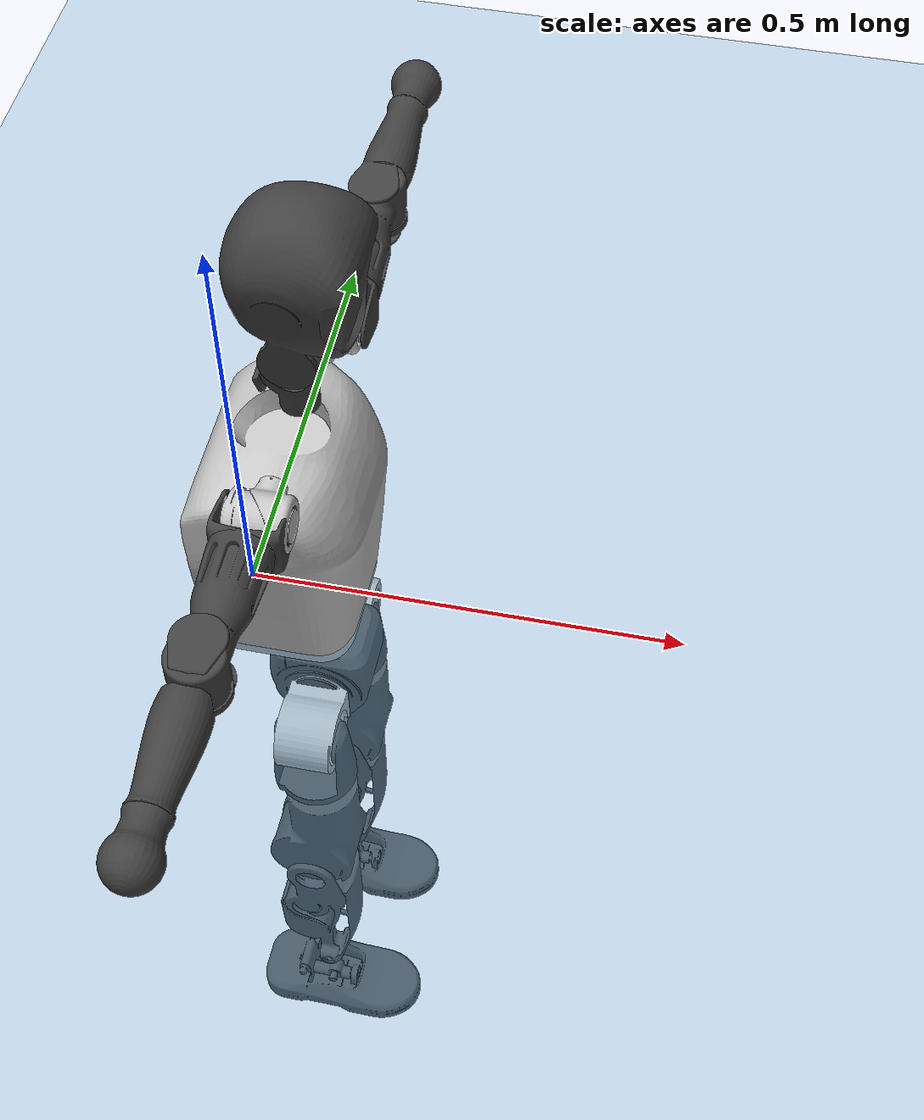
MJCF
<mujoco model="T1">
  <compiler angle="radian" assetdir="assets" balanceinertia="true" inertiafromgeom="false"/>

  <option timestep="0.005" density="1.2" viscosity="2e-05"/>

  <size nkey="1"/>

  <visual>
    <quality shadowsize="8192"/>
    <map shadowclip="0.5"/>
  </visual>

  <default>
    <default class="/">
      <joint armature="0.01" damping="0.01" frictionloss="0.1"/>
      <geom contype="0" conaffinity="0" group="1" solref="-1000 -80"/>
      <site size="0.01 0.005 0.005" group="5"/>
      <general forcelimited="true" biastype="affine" gainprm="25" biasprm="0 -25 -0.6"/>
      <default class="t1">
        <geom rgba="0.25 0.25 0.25 1"/>
        <default class="visual">
          <geom type="mesh" group="2"/>
        </default>
        <default class="collision">
          <geom group="3"/>
        </default>
        <default class="foot">
          <geom size="0.1115 0.05 0.015" type="box" condim="6" group="4" priority="1" solimp="0.015 1 0.015"/>
        </default>
        <default class="reward_collision_sphere">
          <geom group="5" rgba="1 0 0 1"/>
        </default>
      </default>
    </default>
  </default>

  <asset>
    <texture type="skybox" colorspace="auto" name="//unnamed_texture_0" builtin="gradient" rgb1="0.95 0.95 0.95" rgb2="0.95 0.95 0.95" width="100" height="600"/>
    <texture type="2d" colorspace="auto" name="texplane" builtin="checker" rgb1="0.345 0.575 0.748" rgb2="0.345 0.575 0.748" markrgb="1 1 1" width="512" height="512"/>
    <material name="MatPlane" class="/" texture="texplane" texuniform="true" texrepeat="2 2" specular="0.9"/>
    <mesh name="Trunk" class="/" file="Trunk.stl"/>
    <mesh name="H1" class="/" file="H1.stl"/>
    <mesh name="H2" class="/" file="H2.stl"/>
    <mesh name="AL1" class="/" file="AL1.stl"/>
    <mesh name="AL2" class="/" file="AL2.stl"/>
    <mesh name="AL3" class="/" file="AL3.stl"/>
    <mesh name="left_hand_link" class="/" file="left_hand_link.stl"/>
    <mesh name="AR1" class="/" file="AR1.stl"/>
    <mesh name="AR2" class="/" file="AR2.stl"/>
    <mesh name="AR3" class="/" file="AR3.stl"/>
    <mesh name="right_hand_link" class="/" file="right_hand_link.stl"/>
    <mesh name="Waist" class="/" file="Waist.stl"/>
    <mesh name="Hip_Pitch_Left" class="/" file="Hip_Pitch_Left.stl"/>
    <mesh name="Hip_Roll_Left" class="/" file="Hip_Roll_Left.stl"/>
    <mesh name="Hip_Yaw_Left" class="/" file="Hip_Yaw_Left.stl"/>
    <mesh name="Shank_Left" class="/" file="Shank_Left.stl"/>
    <mesh name="Ankle_Cross_Left" class="/" file="Ankle_Cross_Left.stl"/>
    <mesh name="left_foot_link" class="/" file="left_foot_link.stl"/>
    <mesh name="Hip_Pitch_Right" class="/" file="Hip_Pitch_Right.stl"/>
    <mesh name="Hip_Roll_Right" class="/" file="Hip_Roll_Right.stl"/>
    <mesh name="Hip_Yaw_Right" class="/" file="Hip_Yaw_Right.stl"/>
    <mesh name="Shank_Right" class="/" file="Shank_Right.stl"/>
    <mesh name="Ankle_Cross_Right" class="/" file="Ankle_Cross_Right.stl"/>
    <mesh name="right_foot_link" class="/" file="right_foot_link.stl"/>
  </asset>

  <worldbody>
    <geom name="floor" class="/" size="100 100 0.125" type="plane" group="0" material="MatPlane"/>
    <light name="toplight_shadow" class="/" pos="0 0 5" dir="0.0990148 0.0990148 -0.990148" type="directional" ambient="0.04 0.04 0.04" diffuse="0.55 0.55 0.55" specular="0.12 0.12 0.12"/>
    <light name="toplight_fill" class="/" pos="0 0 5" dir="0.0990148 0.0990148 -0.990148" type="directional" castshadow="false" ambient="0.04 0.04 0.04" diffuse="0.3 0.3 0.3" specular="0.08 0.08 0.08"/>
    <body name="trunk" childclass="t1" pos="0.000396937 -0.000452547 0.00158526" quat="1 -0.000296455 -0.000206889 -0.000840778">
      <inertial pos="0.0693204 -0.00174549 0.132827" quat="0.999993 -0.00101046 -0.000718762 -0.00363006" mass="16.8778" diaginertia="0.246676 0.0377068 0.169695"/>
      <joint name="//unnamed_joint_0" type="free" armature="0" damping="0" frictionloss="0"/>
      <geom name="//unnamed_geom_1" class="visual" rgba="0.76 0.76 0.76 1" mesh="Trunk"/>
      <geom name="//unnamed_geom_2" class="collision" size="0.0845867 0.112782 0.169173" pos="0.0749434 0 0.151826" type="box"/>
      <geom name="//unnamed_geom_3" class="reward_collision_sphere" size="0.1297" pos="0.0749434 0 0.126522"/>
      <geom name="//unnamed_geom_4" class="reward_collision_sphere" size="0.0169173" pos="0.0749434 0.0738812 0"/>
      <geom name="//unnamed_geom_5" class="reward_collision_sphere" size="0.0169173" pos="0.0749434 -0.0738812 0"/>
      <geom name="//unnamed_geom_6" class="reward_collision_sphere" size="0.0169173" pos="0.0749434 0.0930033 0.22774"/>
      <geom name="//unnamed_geom_7" class="reward_collision_sphere" size="0.0169173" pos="0.0749434 -0.0930033 0.22774"/>
      <site name="imu" pos="-0.0076228 0.00100024 0.00693888" size="0.0112782"/>
      <camera name="track" pos="0 -1.73838 0" quat="0.707107 0.707107 0 0" mode="trackcom"/>
      <camera name="ego_camera" pos="0.152385 0 0.531392" quat="-0.5 -0.5 0.5 0.5"/>
      <body name="H1" pos="0.0802931 -5.75145e-05 0.312009" quat="1 0.000635453 2.45554e-05 -0.000144594">
        <inertial pos="-0.0022479 -0.00371068 0.0726015" quat="0.763911 -0.0130313 0.00150694 0.645188" mass="0.647201" diaginertia="0.000729782 0.000112685 0.000489859"/>
        <joint name="AAHead_yaw" pos="0 0 0" axis="0.0130076 0.000218608 0.999915" range="-1.59912 1.59489" armature="0.0087134" damping="0.0131982" frictionloss="0.090471"/>
        <geom name="//unnamed_geom_8" class="visual" mesh="H1"/>
        <body name="H2" pos="-0.00172395 0.00642886 0.075788" quat="1 0.000246286 0.000656492 -0.000366977">
          <inertial pos="0.00689518 0.00390949 0.130304" quat="0.98889 0.0946418 -0.0789054 -0.0831424" mass="0.933829" diaginertia="0.00647564 0.00104173 0.00564604"/>
          <joint name="Head_pitch" pos="0 0 0" axis="-0.000511437 -0.999959 0.00905737" range="-1.18954 0.309285" armature="0.0110829" damping="0.0276387" frictionloss="0.125606"/>
          <geom name="//unnamed_geom_9" class="visual" mesh="H2"/>
          <geom name="//unnamed_geom_10" class="collision" size="0.0902258" pos="0.0124906 0 0.139174"/>
          <geom name="//unnamed_geom_11" class="reward_collision_sphere" size="0.101504" pos="0.0249811 0 0.126522"/>
        </body>
      </body>
      <body name="AL1" pos="0.0759152 0.095695 0.281528" quat="0.999996 0.00134764 0.0017379 0.00167477">
        <inertial pos="-0.000291365 0.0404023 -0.00179535" quat="0.5041 0.495843 -0.504129 0.495859" mass="0.755682" diaginertia="0.00412714 0.000680032 0.000983016"/>
        <joint name="Left_Shoulder_Pitch" pos="0 0 0" axis="-0.00583734 0.999973 -0.00450007" range="-3.30589 1.12055" armature="0.0110437" damping="0.0298883" frictionloss="0.114366"/>
        <geom name="//unnamed_geom_12" class="visual" rgba="0.76 0.76 0.76 1" mesh="AL1"/>
        <body name="AL2" pos="0.00434395 0.0430345 0.00143802" quat="1 -2.51742e-05 -7.45563e-06 1.92589e-05">
          <inertial pos="0.0038664 0.028659 -0.000565859" quat="0.493905 0.502628 -0.492893 0.510372" mass="0.222725" diaginertia="0.00122263 0.000175523 0.000568538"/>
          <joint name="Left_Shoulder_Roll" pos="0 0 0" axis="-0.999894 -0.00985227 -0.0106985" stiffness="0.0292533" range="-1.5622 1.76643" armature="0.00841956" damping="0.00984705" frictionloss="0.111461"/>
          <geom name="//unnamed_geom_13" class="visual" mesh="AL2"/>
          <body name="AL3" pos="0.00242209 0.0530477 0.00011246" quat="0.999999 -0.000390882 4.36718e-05 -0.00114518">
            <inertial pos="-0.00362516 0.0786965 0.00111565" quat="0.706414 0.707799 -1.19456e-05 3.53761e-06" mass="1.58318" diaginertia="0.038726 0.00657439 0.00212"/>
            <joint name="Left_Elbow_Pitch" pos="0 0 0" axis="0.00334279 -0.999989 0.00327424" range="-2.1669 2.24105" armature="0.00761275" damping="0" frictionloss="0.108498"/>
            <geom name="//unnamed_geom_14" class="visual" mesh="AL3"/>
            <geom name="//unnamed_geom_15" class="collision" size="0.0338347 0.0845867" pos="0 0.0434595 0" quat="0.707105 0.707108 0 0" type="cylinder"/>
            <geom name="//unnamed_geom_16" class="reward_collision_sphere" size="0.0406016"/>
            <body name="left_hand_link" pos="-0.00197856 0.130741 0.000973506" quat="0.999997 0.00229594 0.000856014 0.000419083">
              <inertial pos="0.00517929 0.0966178 0.00168095" quat="0.714061 0.700041 0.00240147 -0.00738068" mass="0.473767" diaginertia="0.0260834 0.0041196 0.000667748"/>
              <joint name="Left_Elbow_Yaw" pos="0 0 0" axis="-0.00254443 0.0035748 0.99999" stiffness="0.00401115" range="-2.46049 0.109956" armature="0.00986873" damping="0.0152222" frictionloss="0.113794"/>
              <geom name="//unnamed_geom_17" class="visual" mesh="left_hand_link"/>
              <geom name="//unnamed_geom_18" class="collision" size="0.0338347 0.0986844" pos="0 0.112995 0" quat="0.707105 0.707108 0 0" type="cylinder"/>
              <geom name="//unnamed_geom_19" class="reward_collision_sphere" size="0.0563911"/>
              <geom name="//unnamed_geom_20" class="reward_collision_sphere" size="0.0394738" pos="0 0.0956109 0"/>
              <geom name="//unnamed_geom_21" class="reward_collision_sphere" size="0.0394738" pos="0 0.186876 0"/>
            </body>
          </body>
        </body>
      </body>
      <body name="AR1" pos="0.0729306 -0.0878321 0.280393" quat="0.999999 0.00036812 0.00107346 0.000292172">
        <inertial pos="-8.66619e-05 -0.0328591 -0.00210897" quat="0.505808 0.495426 -0.504477 0.494181" mass="0.809348" diaginertia="0.00428044 0.000655146 0.00100225"/>
        <joint name="Right_Shoulder_Pitch" pos="0 0 0" axis="-0.0138762 -0.99988 0.00684983" stiffness="0.0286853" range="-1.22609 3.30331" armature="0.00936366" damping="0" frictionloss="0.10868"/>
        <geom name="//unnamed_geom_22" class="visual" rgba="0.76 0.76 0.76 1" mesh="AR1"/>
        <body name="AR2" pos="-0.00554102 -0.0411701 0.000383124" quat="0.999998 -0.00090872 -0.00130031 -0.00117572">
          <inertial pos="0.0056603 -0.0314837 -0.00121398" quat="0.514927 0.489493 -0.508687 0.486297" mass="0.24217" diaginertia="0.0012282 0.000163279 0.000557573"/>
          <joint name="Right_Shoulder_Roll" pos="0 0 0" axis="-0.999964 -0.0040603 0.00742841" range="-1.70524 1.60956" armature="0.0111459" damping="0.0111093" frictionloss="0.0773877"/>
          <geom name="//unnamed_geom_23" class="visual" mesh="AR2"/>
          <body name="AR3" pos="-0.000564295 -0.050842 0.00640507" quat="1 -0.00014826 -0.000103209 0.000106333">
            <inertial pos="0.00123669 -0.0700899 -0.00100188" quat="0.710934 0.70307 -0.00315783 0.0159634" mass="1.44554" diaginertia="0.0385911 0.00610891 0.00190993"/>
            <joint name="Right_Elbow_Pitch" pos="0 0 0" axis="-0.0145988 0.999838 0.0105492" range="-2.19779 2.27423" armature="0.0137632" damping="0.0172955" frictionloss="0.107904"/>
            <geom name="//unnamed_geom_24" class="visual" mesh="AR3"/>
            <geom name="//unnamed_geom_25" class="collision" size="0.0338347 0.0845867" pos="0 -0.0434595 0" quat="0.707105 0.707108 0 0" type="cylinder"/>
            <geom name="//unnamed_geom_26" class="reward_collision_sphere" size="0.0406016"/>
            <body name="right_hand_link" pos="-0.00158723 -0.129051 -0.0021318" quat="0.999999 0.000737167 -0.000580295 0.000928155">
              <inertial pos="0.00172653 -0.0960659 -0.00344276" quat="0.70673 0.707481 0.00162377 -0.000754042" mass="0.451745" diaginertia="0.0240074 0.0040827 0.000688749"/>
              <joint name="Right_Elbow_Yaw" pos="0 0 0" axis="-0.00450396 0.00207285 0.999988" stiffness="0.00633506" range="-0.0277682 2.42292" armature="0.00911635" damping="0.034633" frictionloss="0.10308"/>
              <geom name="//unnamed_geom_27" class="visual" mesh="right_hand_link"/>
              <geom name="//unnamed_geom_28" class="collision" size="0.0338347 0.0986844" pos="0 -0.112995 0" quat="0.707105 0.707108 0 0" type="cylinder"/>
              <geom name="//unnamed_geom_29" class="reward_collision_sphere" size="0.0563911"/>
              <geom name="//unnamed_geom_30" class="reward_collision_sphere" size="0.0394738" pos="0 -0.0956109 0"/>
              <geom name="//unnamed_geom_31" class="reward_collision_sphere" size="0.0394738" pos="0 -0.186876 0"/>
            </body>
          </body>
        </body>
      </body>
      <body name="Waist" pos="0.079274 0.0022527 -0.151439" quat="1 -2.2925e-06 -1.93393e-05 6.22222e-05">
        <inertial pos="0.00689634 -0.00264551 0.0119138" quat="0.984904 0.0157465 -0.172375 -0.00194829" mass="4.00534" diaginertia="0.0180777 0.00276795 0.0167038"/>
        <joint name="Waist" pos="0 0 0" axis="0.0186168 0.00192681 0.999825" range="-1.52333 1.64718" armature="0.0116048" damping="0.00535875" frictionloss="0.0938642"/>
        <geom name="//unnamed_geom_32" class="visual" mesh="Waist"/>
        <body name="Hip_Pitch_Left" pos="0.00180732 0.09104 -0.00146106" quat="1 0.000184326 -0.00012692 -8.24809e-05">
          <inertial pos="0.000102794 -0.00720012 -0.0247752" quat="0.973987 0.226173 0.011127 -0.00850054" mass="1.51034" diaginertia="0.00552099 0.000698933 0.00420127"/>
          <joint name="Left_Hip_Pitch" pos="0 0 0" axis="0.0177422 0.999471 0.0272721" stiffness="0.0226264" range="-1.82977 1.46876" armature="0.0114132" damping="0.0249958" frictionloss="0.109323"/>
          <geom name="//unnamed_geom_33" class="visual" rgba="0.76 0.76 0.76 1" mesh="Hip_Pitch_Left"/>
          <body name="Hip_Roll_Left" pos="-0.00157724 -0.00667606 -0.0284517" quat="0.999995 0.00229388 0.00186843 0.00083851">
            <inertial pos="0.00395861 -0.000219094 -0.0657109" quat="0.713928 -0.00667046 -0.00581703 0.700163" mass="0.572633" diaginertia="0.00538075 0.000816623 0.00178533"/>
            <joint name="Left_Hip_Roll" pos="0 0 0" axis="-0.999673 -0.0194027 0.0166695" range="-1.5447 0.19502" armature="0.0109214" damping="0" frictionloss="0.0989665"/>
            <geom name="//unnamed_geom_34" class="visual" mesh="Hip_Roll_Left"/>
            <geom name="//unnamed_geom_35" class="reward_collision_sphere" size="0.0620302"/>
            <body name="Hip_Yaw_Left" pos="0.00189534 0.0024646 -0.104993" quat="1 4.0707e-05 0.000106372 -0.000158668">
              <inertial pos="-0.00764745 0.00235083 -0.112383" quat="0.705105 -0.0508396 -0.0188027 0.707028" mass="3.22019" diaginertia="0.0795856 0.0127982 0.00880595"/>
              <joint name="Left_Hip_Yaw" pos="0 0 0" axis="-0.00822733 0.00467828 -0.999955" range="-0.971813 0.987764" armature="0.0112975" damping="0.0119025" frictionloss="0.123233"/>
              <geom name="//unnamed_geom_36" class="visual" mesh="Hip_Yaw_Left"/>
              <geom name="//unnamed_geom_37" class="collision" size="0.0563911 0.0902258" type="cylinder"/>
              <body name="Shank_Left" pos="-0.0186978 0.00388828 -0.167823" quat="1 0.000296464 1.23745e-05 -0.000222656">
                <inertial pos="-0.00862025 0.00255773 -0.159333" quat="0.9972 0.0149539 -0.0261335 0.0684581" mass="2.47102" diaginertia="0.105391 0.0169762 0.00631775"/>
                <joint name="Left_Knee_Pitch" pos="0 0 0" axis="-0.000128158 0.999998 -0.00176889" stiffness="0.00131857" range="0.0294199 2.32972" armature="0.00922383" damping="0.0105593" frictionloss="0.0995522"/>
                <geom name="//unnamed_geom_38" class="visual" mesh="Shank_Left"/>
                <geom name="//unnamed_geom_39" class="collision" size="0.0563911 0.0845867" pos="0 0 -0.151826" type="cylinder"/>
                <geom name="//unnamed_geom_40" class="reward_collision_sphere" size="0.0733084"/>
                <body name="Ankle_Cross_Left" pos="-0.00311548 -0.0016599 -0.351678" quat="0.999998 -0.000275117 -0.00145593 -0.00129136">
                  <inertial pos="-0.00534104 0.0057163 -0.0122764" quat="0.4494 0.553564 0.543872 0.442504" mass="0.103415" diaginertia="8.72366e-05 1.20823e-05 3.57431e-05"/>
                  <joint name="Left_Ankle_Pitch" pos="0 0 0" axis="0.00320729 0.999987 0.00408543" range="-0.834317 0.388118" armature="0.0102057" damping="0.00094016" frictionloss="0.122997"/>
                  <geom name="//unnamed_geom_41" class="visual" mesh="Ankle_Cross_Left"/>
                  <body name="left_foot_link" pos="0.00245598 0.00521352 -0.0161494" quat="1 -5.52393e-05 -5.21142e-05 -2.44573e-05">
                    <inertial pos="-0.00397281 -0.0012474 -0.0175207" quat="-0.00569166 0.621048 -0.0101436 0.783686" mass="0.976146" diaginertia="0.00772092 0.00118345 0.00675316"/>
                    <joint name="Left_Ankle_Roll" pos="0 0 0" axis="-1 6.2242e-05 5.88992e-05" range="-0.446751 0.445556" armature="0.013581" damping="0.00402247" frictionloss="0.112963"/>
                    <geom name="//unnamed_geom_42" class="visual" mesh="left_foot_link"/>
                    <geom name="left_foot" class="foot" size="0.0754806 0.0612702 0.0191781" pos="0.0124906 0 -0.0189783"/>
                    <geom name="//unnamed_geom_44" class="reward_collision_sphere" size="0.0586468" pos="0.0124906 0 -0.0189783"/>
                    <geom name="//unnamed_geom_45" class="reward_collision_sphere" size="0.0338347" pos="0.11866 -0.0199914 -0.0189783"/>
                    <geom name="//unnamed_geom_46" class="reward_collision_sphere" size="0.0338347" pos="-0.087434 -0.0199914 -0.0189783"/>
                    <site name="left_foot" class="foot" pos="0.0124906 0 -0.0189783" size="0.0112782"/>
                  </body>
                </body>
              </body>
            </body>
          </body>
        </body>
        <body name="Hip_Pitch_Right" pos="0.00237682 -0.0961388 0.000949262" quat="0.999996 0.0017523 -0.00104207 -0.00208532">
          <inertial pos="-0.00181684 0.0132374 -0.0225621" quat="0.973388 -0.228694 0.0144365 -0.00256723" mass="1.53683" diaginertia="0.00581792 0.000779838 0.00418253"/>
          <joint name="Right_Hip_Pitch" pos="0 0 0" axis="-0.00810699 -0.999965 -0.00200158" range="-1.53692 1.7678" armature="0.0109144" damping="0.00818149" frictionloss="0.0834533"/>
          <geom name="//unnamed_geom_47" class="visual" rgba="0.76 0.76 0.76 1" mesh="Hip_Pitch_Right"/>
          <body name="Hip_Roll_Right" pos="0.00273876 -0.0021178 -0.0270348" quat="1 0.00020354 -0.000476437 -6.33658e-06">
            <inertial pos="0.00560967 -0.00588005 -0.0626097" quat="0.709382 -0.00438365 -0.00257871 0.704806" mass="0.542203" diaginertia="0.00512985 0.000751007 0.00166656"/>
            <joint name="Right_Hip_Roll" pos="0 0 0" axis="-0.9999 0.0112402 0.00859236" stiffness="0.0034255" range="-0.237764 1.57307" armature="0.0117973" damping="0.0127958" frictionloss="0.125087"/>
            <geom name="//unnamed_geom_48" class="visual" mesh="Hip_Roll_Right"/>
            <geom name="//unnamed_geom_49" class="reward_collision_sphere" size="0.0620302"/>
            <body name="Hip_Yaw_Right" pos="0.00211828 0.00040144 -0.107494" quat="1 -4.37789e-05 -7.48659e-05 -3.15747e-05">
              <inertial pos="-0.00957843 0.000970947 -0.110457" quat="0.713853 -0.0326026 -0.0337933 0.698719" mass="3.24359" diaginertia="0.0763232 0.0127807 0.0082239"/>
              <joint name="Right_Hip_Yaw" pos="0 0 0" axis="0.0110579 -0.00996523 -0.999889" range="-1.06938 1.06034" armature="0.0147051" damping="0" frictionloss="0.0871165"/>
              <geom name="//unnamed_geom_50" class="visual" mesh="Hip_Yaw_Right"/>
              <geom name="//unnamed_geom_51" class="collision" size="0.0563911 0.0902258" type="cylinder"/>
              <body name="Shank_Right" pos="-0.0148201 -0.0052978 -0.169619" quat="0.999998 0.00160065 0.00112597 4.37632e-06">
                <inertial pos="-0.00822787 -0.00208706 -0.160462" quat="0.999158 0.00696345 -0.0225691 -0.0335396" mass="2.63568" diaginertia="0.106964 0.0169111 0.00584069"/>
                <joint name="Right_Knee_Pitch" pos="0 0 0" axis="-0.0152485 -0.999883 -0.000928928" range="-2.40155 0.0529058" armature="0.0100587" damping="0" frictionloss="0.104114"/>
                <geom name="//unnamed_geom_52" class="visual" mesh="Shank_Right"/>
                <geom name="//unnamed_geom_53" class="collision" size="0.0563911 0.0845867" pos="0 0 -0.151826" type="cylinder"/>
                <geom name="//unnamed_geom_54" class="reward_collision_sphere" size="0.0733084"/>
                <body name="Ankle_Cross_Right" pos="0.000779023 0.00286526 -0.352537" quat="0.999995 -0.001172 -0.000653935 -0.00300928">
                  <inertial pos="-0.00627582 -0.00124364 -0.0123368" quat="0.443113 0.550458 0.551576 0.443182" mass="0.105929" diaginertia="9.03396e-05 1.27381e-05 3.79949e-05"/>
                  <joint name="Right_Ankle_Pitch" pos="0 0 0" axis="0.00869607 -0.999926 -0.00849639" range="-0.28895 0.89595" armature="0.0122539" damping="0.00120577" frictionloss="0.0995715"/>
                  <geom name="//unnamed_geom_55" class="visual" mesh="Ankle_Cross_Right"/>
                  <body name="right_foot_link" pos="-0.000110087 0.00348038 -0.0158502" quat="1 0.000458382 0.00080077 -0.000354206">
                    <inertial pos="-0.00200821 0.00201853 -0.00867654" quat="-0.00596495 0.612965 0.00156279 0.790086" mass="0.96378" diaginertia="0.00842108 0.00119745 0.00722795"/>
                    <joint name="Right_Ankle_Roll" pos="0 0 0" axis="-0.999966 -0.00698313 -0.00436254" range="-0.57163 0.427981" armature="0.00944101" damping="0.000653693" frictionloss="0.121122"/>
                    <geom name="//unnamed_geom_56" class="visual" mesh="right_foot_link"/>
                    <geom name="right_foot" class="foot" size="0.0848862 0.0589332 0.017987" pos="0.0124906 0 -0.0189783"/>
                    <geom name="//unnamed_geom_58" class="reward_collision_sphere" size="0.0451129"/>
                    <geom name="//unnamed_geom_59" class="reward_collision_sphere" size="0.0338347" pos="0.0124906 0 -0.0189783"/>
                    <geom name="//unnamed_geom_60" class="reward_collision_sphere" size="0.0338347" pos="0.11866 0.0199914 -0.0189783"/>
                    <geom name="//unnamed_geom_61" class="reward_collision_sphere" size="0.0338347" pos="-0.087434 0.0199914 -0.0189783"/>
                    <site name="right_foot" class="foot" pos="0.0124906 0 -0.0189783" size="0.0112782"/>
                  </body>
                </body>
              </body>
            </body>
          </body>
        </body>
      </body>
    </body>
  </worldbody>

  <contact>
    <pair class="/" geom1="floor" geom2="left_foot" name="//unnamed_contact_0"/>
    <pair class="/" geom1="floor" geom2="right_foot" name="//unnamed_contact_1"/>
  </contact>

  <actuator>
    <general name="AAHead_yaw" class="/" joint="AAHead_yaw" forcerange="-7.99329 7.99329" gainprm="28.1225" biasprm="0 -28.1225 -0.631085"/>
    <general name="Head_pitch" class="/" joint="Head_pitch" forcerange="-7.52304 7.52304" gainprm="28.1225" biasprm="0 -28.1225 -0.631085"/>
    <general name="Left_Shoulder_Pitch" class="/" joint="Left_Shoulder_Pitch" forcerange="-18.0001 18.0001" gainprm="28.1225" biasprm="0 -28.1225 -0.631085"/>
    <general name="Left_Shoulder_Roll" class="/" joint="Left_Shoulder_Roll" forcerange="-17.6301 17.6301" gainprm="28.1225" biasprm="0 -28.1225 -0.631085"/>
    <general name="Left_Elbow_Pitch" class="/" joint="Left_Elbow_Pitch" forcerange="-19.2327 19.2327" gainprm="28.1225" biasprm="0 -28.1225 -0.631085"/>
    <general name="Left_Elbow_Yaw" class="/" joint="Left_Elbow_Yaw" forcerange="-20.9195 20.9195" gainprm="28.1225" biasprm="0 -28.1225 -0.631085"/>
    <general name="Right_Shoulder_Pitch" class="/" joint="Right_Shoulder_Pitch" forcerange="-20.1833 20.1833" gainprm="28.1225" biasprm="0 -28.1225 -0.631085"/>
    <general name="Right_Shoulder_Roll" class="/" joint="Right_Shoulder_Roll" forcerange="-18.9918 18.9918" gainprm="28.1225" biasprm="0 -28.1225 -0.631085"/>
    <general name="Right_Elbow_Pitch" class="/" joint="Right_Elbow_Pitch" forcerange="-22.4681 22.4681" gainprm="28.1225" biasprm="0 -28.1225 -0.631085"/>
    <general name="Right_Elbow_Yaw" class="/" joint="Right_Elbow_Yaw" forcerange="-18.2199 18.2199" gainprm="28.1225" biasprm="0 -28.1225 -0.631085"/>
    <general name="Waist" class="/" joint="Waist" forcerange="-38.4567 38.4567" gainprm="28.1225" biasprm="0 -28.1225 -0.631085"/>
    <general name="Left_Hip_Pitch" class="/" joint="Left_Hip_Pitch" forcerange="-47.2441 47.2441" gainprm="28.1225" biasprm="0 -28.1225 -0.631085"/>
    <general name="Left_Hip_Roll" class="/" joint="Left_Hip_Roll" forcerange="-33.2347 33.2347" gainprm="28.1225" biasprm="0 -28.1225 -0.631085"/>
    <general name="Left_Hip_Yaw" class="/" joint="Left_Hip_Yaw" forcerange="-30.8164 30.8164" gainprm="28.1225" biasprm="0 -28.1225 -0.631085"/>
    <general name="Left_Knee_Pitch" class="/" joint="Left_Knee_Pitch" forcerange="-74.5086 74.5086" gainprm="28.1225" biasprm="0 -28.1225 -0.631085"/>
    <general name="Left_Ankle_Pitch" class="/" joint="Left_Ankle_Pitch" forcerange="-17.6965 17.6965" gainprm="28.1225" biasprm="0 -28.1225 -0.631085"/>
    <general name="Left_Ankle_Roll" class="/" joint="Left_Ankle_Roll" forcerange="-21.0442 21.0442" gainprm="28.1225" biasprm="0 -28.1225 -0.631085"/>
    <general name="Right_Hip_Pitch" class="/" joint="Right_Hip_Pitch" forcerange="-49.0321 49.0321" gainprm="28.1225" biasprm="0 -28.1225 -0.631085"/>
    <general name="Right_Hip_Roll" class="/" joint="Right_Hip_Roll" forcerange="-37.3835 37.3835" gainprm="28.1225" biasprm="0 -28.1225 -0.631085"/>
    <general name="Right_Hip_Yaw" class="/" joint="Right_Hip_Yaw" forcerange="-28.1011 28.1011" gainprm="28.1225" biasprm="0 -28.1225 -0.631085"/>
    <general name="Right_Knee_Pitch" class="/" joint="Right_Knee_Pitch" forcerange="-72.6854 72.6854" gainprm="28.1225" biasprm="0 -28.1225 -0.631085"/>
    <general name="Right_Ankle_Pitch" class="/" joint="Right_Ankle_Pitch" forcerange="-23.2863 23.2863" gainprm="28.1225" biasprm="0 -28.1225 -0.631085"/>
    <general name="Right_Ankle_Roll" class="/" joint="Right_Ankle_Roll" forcerange="-17.3924 17.3924" gainprm="28.1225" biasprm="0 -28.1225 -0.631085"/>
  </actuator>

  <sensor>
    <gyro site="imu" name="imu_angular_velocity"/>
    <velocimeter site="imu" name="imu_linear_velocity"/>
    <framelinvel objtype="site" objname="left_foot" name="left_foot_global_linear_velocity"/>
    <framelinvel objtype="site" objname="right_foot" name="right_foot_global_linear_velocity"/>
  </sensor>

  <keyframe>
    <key name="home" qpos="0 0 0.6385 1 0 0 0 0 0 0 1.4 0 -0.4 0 -1.4 0 0.4 0 -0.4 0 0 0.8 -0.4 0 0.4 0 0 -0.8 0.4 0"/>
  </keyframe>
</mujoco>
